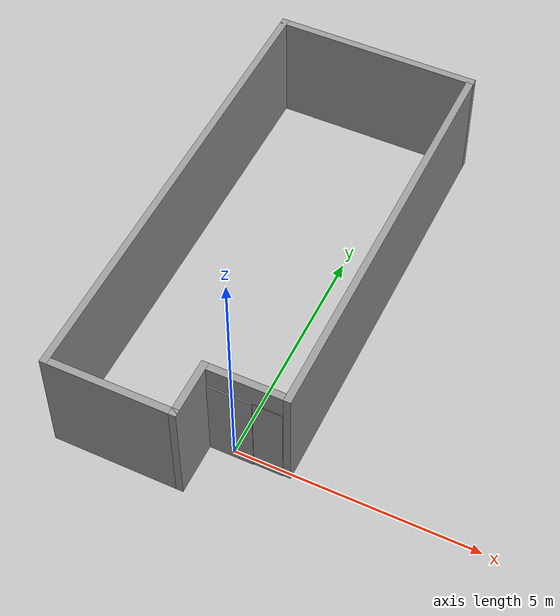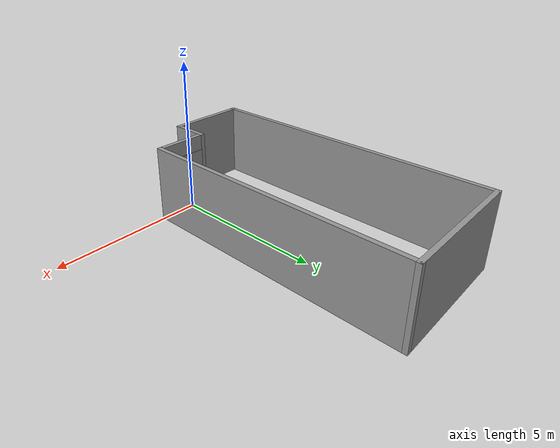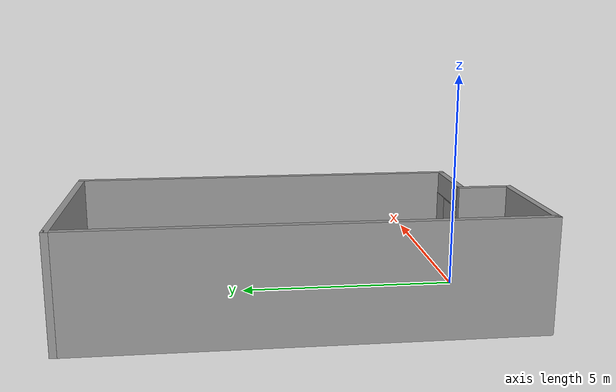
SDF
<?xml version='1.0'?>
<sdf version='1.7'>
  <model name='B10'>
    <pose>-0.9935 3.814 0 0 -0 0</pose>
    <link name='Door_0'>
      <collision name='Door_0_Collision'>
        <geometry>
          <box>
            <size>0.91 0.2 2</size>
          </box>
        </geometry>
        <pose>0 0 1 0 -0 0</pose>
      </collision>
      <visual name='Door_0_Visual'>
        <pose>0 0 1 0 -0 0</pose>
        <geometry>
          <box>
            <size>0.91 0.2 2</size>
          </box>
        </geometry>
        <material>
          <script>
            <uri>file://media/materials/scripts/gazebo.material</uri>
            <name>Gazebo/Grey</name>
          </script>
        </material>
      </visual>
      <pose>0.9935 -3.814 0 0 -0 0</pose>
    </link>
    <link name='Door_2'>
      <collision name='Door_2_Collision'>
        <geometry>
          <box>
            <size>0.61 0.17 2</size>
          </box>
        </geometry>
        <pose>0 0 1 0 -0 0</pose>
      </collision>
      <visual name='Door_2_Visual'>
        <pose>0 0 1 0 -0 0</pose>
        <geometry>
          <box>
            <size>0.61 0.17 2</size>
          </box>
        </geometry>
        <material>
          <script>
            <uri>file://media/materials/scripts/gazebo.material</uri>
            <name>Gazebo/Grey</name>
          </script>
        </material>
      </visual>
      <pose>1.7515 -3.816 0 0 -0 0</pose>
    </link>
    <link name='Wall_10'>
      <collision name='Wall_10_Collision'>
        <geometry>
          <box>
            <size>1.26001 0.15 2.5</size>
          </box>
        </geometry>
        <pose>0 0 1.25 0 -0 0</pose>
      </collision>
      <visual name='Wall_10_Visual'>
        <pose>0 0 1.25 0 -0 0</pose>
        <geometry>
          <box>
            <size>1.26001 0.15 2.5</size>
          </box>
        </geometry>
        <material>
          <script>
            <uri>file://media/materials/scripts/gazebo.material</uri>
            <name>Gazebo/Grey</name>
          </script>
          <ambient>1 1 1 1</ambient>
        </material>
        <meta>
          <layer>0</layer>
        </meta>
      </visual>
      <pose>0.4615 -4.369 0 0 -0 1.5708</pose>
    </link>
    <link name='Wall_5'>
      <collision name='Wall_5_Collision'>
        <geometry>
          <box>
            <size>8.888 0.15 2.5</size>
          </box>
        </geometry>
        <pose>0 0 1.25 0 -0 0</pose>
      </collision>
      <visual name='Wall_5_Visual'>
        <pose>0 0 1.25 0 -0 0</pose>
        <geometry>
          <box>
            <size>8.888 0.15 2.5</size>
          </box>
        </geometry>
        <material>
          <script>
            <uri>file://media/materials/scripts/gazebo.material</uri>
            <name>Gazebo/Grey</name>
          </script>
          <ambient>1 1 1 1</ambient>
        </material>
        <meta>
          <layer>0</layer>
        </meta>
      </visual>
      <pose>2.1335 0.555002 0 0 -0 1.5708</pose>
    </link>
    <link name='Wall_7'>
      <collision name='Wall_7_Collision'>
        <geometry>
          <box>
            <size>4.417 0.15 2.5</size>
          </box>
        </geometry>
        <pose>0 0 1.25 0 -0 0</pose>
      </collision>
      <visual name='Wall_7_Visual'>
        <pose>0 0 1.25 0 -0 0</pose>
        <geometry>
          <box>
            <size>4.417 0.15 2.5</size>
          </box>
        </geometry>
        <material>
          <script>
            <uri>file://media/materials/scripts/gazebo.material</uri>
            <name>Gazebo/Grey</name>
          </script>
          <ambient>1 1 1 1</ambient>
        </material>
        <meta>
          <layer>0</layer>
        </meta>
      </visual>
      <pose>0 4.924 0 0 -0 3.14159</pose>
    </link>
    <link name='Wall_8'>
      <collision name='Wall_8_Collision'>
        <geometry>
          <box>
            <size>9.998 0.15 2.5</size>
          </box>
        </geometry>
        <pose>0 0 1.25 0 -0 0</pose>
      </collision>
      <visual name='Wall_8_Visual'>
        <pose>0 0 1.25 0 -0 0</pose>
        <geometry>
          <box>
            <size>9.998 0.15 2.5</size>
          </box>
        </geometry>
        <material>
          <script>
            <uri>file://media/materials/scripts/gazebo.material</uri>
            <name>Gazebo/Grey</name>
          </script>
          <ambient>1 1 1 1</ambient>
        </material>
        <meta>
          <layer>0</layer>
        </meta>
      </visual>
      <pose>-2.1335 2e-06 0 0 -0 -1.5708</pose>
    </link>
    <link name='Wall_9'>
      <collision name='Wall_9_Collision'>
        <geometry>
          <box>
            <size>2.745 0.15 2.5</size>
          </box>
        </geometry>
        <pose>0 0 1.25 0 -0 0</pose>
      </collision>
      <visual name='Wall_9_Visual'>
        <pose>0 0 1.25 0 -0 0</pose>
        <geometry>
          <box>
            <size>2.745 0.15 2.5</size>
          </box>
        </geometry>
        <material>
          <script>
            <uri>file://media/materials/scripts/gazebo.material</uri>
            <name>Gazebo/Grey</name>
          </script>
          <ambient>1 1 1 1</ambient>
        </material>
        <meta>
          <layer>0</layer>
        </meta>
      </visual>
      <pose>-0.836 -4.924 0 0 -0 0</pose>
    </link>
    <link name='Wall_11'>
      <collision name='Wall_11_Collision'>
        <geometry>
          <box>
            <size>1.524 0.15 2.5</size>
          </box>
        </geometry>
        <pose>0 0 1.25 0 -0 0</pose>
      </collision>
      <visual name='Wall_11_Visual'>
        <pose>0 0 1.25 0 -0 0</pose>
        <geometry>
          <box>
            <size>1.524 0.15 2.5</size>
          </box>
        </geometry>
        <material>
          <script>
            <uri>file://media/materials/scripts/gazebo.material</uri>
            <name>Gazebo/Grey</name>
          </script>
          <ambient>1 1 1 1</ambient>
        </material>
        <meta>
          <layer>0</layer>
        </meta>
      </visual>
      <pose>1.295 -3.814 0 0 -0 0</pose>
    </link>
    <static>1</static>
  </model>
</sdf>
